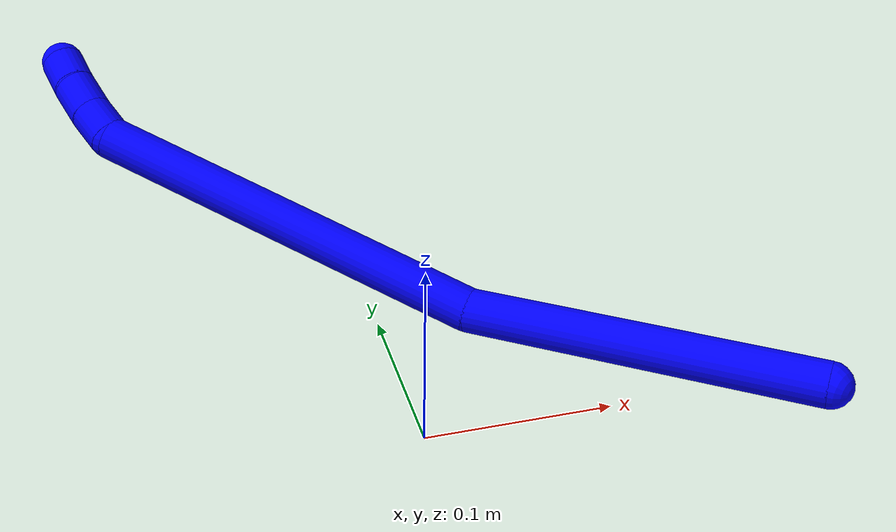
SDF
<sdf version="1.7">
 <world name="default">
  <plugin name="TubeGeneratorPlugin" filename="libtube_generator_plugin.so"/>
  <model name="photoneo_s_sensor">
   <static>1</static>
   <pose>0 0 2 1.57079 1.57079 3.14159</pose>
   <link name="link">
    <inertial><mass>0.1</mass></inertial>
    <sensor name="sensor" type="depth">
     <update_rate>30</update_rate>
     <camera>
      <horizontal_fov>1.22</horizontal_fov>
      <image><width>1920</width><height>1200</height><format>B8G8R8</format></image>
      <clip><near>0.1</near><far>4</far></clip>
      <depth_camera><output>points</output></depth_camera>
     </camera>
     <plugin name="camera_plugin" filename="libgazebo_ros_depth_camera.so">
      <baseline>0.2</baseline>
      <alwaysOn>1</alwaysOn>
      <updateRate>0.0</updateRate>
      <cameraName>camera_ir</cameraName>
      <imageTopicName>/camera/color/image_raw</imageTopicName>
      <cameraInfoTopicName>/camera/color/camera_info</cameraInfoTopicName>
      <depthImageTopicName>/camera/depth/image_raw</depthImageTopicName>
      <depthImageCameraInfoTopicName>/camera/depth/camera_info</depthImageCameraInfoTopicName>
      <pointCloudTopicName>/camera/depth/points</pointCloudTopicName>
      <frameName>fr_optical</frameName>
      <pointCloudCutoff>0.1</pointCloudCutoff>
      <pointCloudCutoffMax>2.0</pointCloudCutoffMax>
      <distortionK1>0</distortionK1>
      <distortionK2>0</distortionK2>
      <distortionK3>0</distortionK3>
      <distortionT1>0</distortionT1>
      <distortionT2>0</distortionT2>
      <CxPrime>0</CxPrime>
      <Cx>0</Cx>
      <Cy>0</Cy>
      <focalLength>0</focalLength>
      <hackBaseline>0</hackBaseline>
     </plugin>
    </sensor>
   </link>
  </model>
  <gravity>0 0 -9.8</gravity>
  <magnetic_field>6e-06 2.3e-05 -4.2e-05</magnetic_field>
  <atmosphere type="adiabatic"/>
  <physics name="default_physics" default="0" type="ode">
   <max_step_size>0.003</max_step_size>
   <real_time_factor>1</real_time_factor>
   <real_time_update_rate>1000</real_time_update_rate>
   <max_contacts>10000</max_contacts>
   <ode>
    <solver>
     <type>quick</type>
     <iters>100</iters>
     <sor>1.3</sor>
     <use_dynamic_moi_rescaling>0</use_dynamic_moi_rescaling>
    </solver>
    <constraints>
     <contact_max_correcting_vel>0</contact_max_correcting_vel>
     <contact_surface_layer>0.001</contact_surface_layer>
     <cfm>0</cfm>
     <erp>0.2</erp>
    </constraints>
   </ode>
  </physics>
  <scene><ambient>0.4 0.4 0.4 1</ambient><background>0.7 0.7 0.7 1</background><shadows>0</shadows></scene>
  <audio><device>default</device></audio>
  <spherical_coordinates>
   <surface_model>EARTH_WGS84</surface_model>
   <latitude_deg>0</latitude_deg>
   <longitude_deg>0</longitude_deg>
   <elevation>0</elevation>
   <heading_deg>0</heading_deg>
  </spherical_coordinates>
  <model name="bin">
   <static>1</static>
   <link name="bottom">
    <collision name="collision-bottom">
     <pose>0 0 -0.01 0 -0 0</pose>
     <geometry><box><size>0.8 0.6 0.02</size></box></geometry>
     <surface>
      <friction><ode><mu>100</mu><mu2>100</mu2></ode></friction>
      <contact><collide_bitmask>65535</collide_bitmask></contact>
     </surface>
    </collision>
   </link>
   <link name="west_wall">
    <collision name="collision-west_wall">
     <pose>-0.41 0 0.1 0 -0 0</pose>
     <geometry><box><size>0.02 0.6 0.2</size></box></geometry>
     <surface>
      <friction><ode><mu>100</mu><mu2>100</mu2></ode></friction>
      <contact><collide_bitmask>65535</collide_bitmask></contact>
     </surface>
    </collision>
   </link>
   <link name="east_wall">
    <collision name="collision-east_wall">
     <pose>0.41 0 0.1 0 -0 0</pose>
     <geometry><box><size>0.02 0.6 0.2</size></box></geometry>
     <surface>
      <friction><ode><mu>100</mu><mu2>100</mu2></ode></friction>
      <contact><collide_bitmask>65535</collide_bitmask></contact>
     </surface>
    </collision>
   </link>
   <link name="south_wall">
    <collision name="collision-south_wall">
     <pose>0 -0.31 0.1 0 -0 0</pose>
     <geometry><box><size>0.8 0.02 0.2</size></box></geometry>
     <surface>
      <friction><ode><mu>100</mu><mu2>100</mu2></ode></friction>
      <contact><collide_bitmask>65535</collide_bitmask></contact>
     </surface>
    </collision>
   </link>
   <link name="north_wall">
    <collision name="collision-north_wall">
     <pose>0 0.31 0.1 0 -0 0</pose>
     <geometry><box><size>0.8 0.02 0.2</size></box></geometry>
     <surface>
      <friction><ode><mu>100</mu><mu2>100</mu2></ode></friction>
      <contact><collide_bitmask>65535</collide_bitmask></contact>
     </surface>
    </collision>
   </link>
  </model>
  <model name="1">
   <static>0</static>
   <link name="1">
    <collision name="collision-cylinder-e_1_1_4">
     <pose>-0.006798 0.035169 0.09151 -0.366919 -0.06923 0.01285</pose>
     <geometry><cylinder><radius>0.0125</radius><length>0.196542</length></cylinder></geometry>
     <surface>
      <friction><ode><mu>1.16</mu><mu2>1.16</mu2><slip1>0</slip1><slip2>0</slip2></ode></friction>
      <contact><ode><kp>1e+06</kp><kd>1</kd><max_vel>0</max_vel><min_depth>0.001</min_depth></ode></contact>
     </surface>
    </collision>
    <visual name="visual-cylinder-e_1_1_4">
     <pose>-0.006798 0.035169 0.09151 -0.366919 -0.06923 0.01285</pose>
     <geometry><cylinder><radius>0.0125</radius><length>0.196542</length></cylinder></geometry>
     <material><ambient>0 0 1 1</ambient></material>
    </visual>
    <collision name="collision-cylinder-e_2_4_5">
     <pose>-0.052666 0.100347 0.290608 -0.272001 -0.336496 0.046479</pose>
     <geometry><cylinder><radius>0.0125</radius><length>0.236662</length></cylinder></geometry>
     <surface>
      <friction><ode><mu>1.16</mu><mu2>1.16</mu2><slip1>0</slip1><slip2>0</slip2></ode></friction>
      <contact><ode><kp>1e+06</kp><kd>1</kd><max_vel>0</max_vel><min_depth>0.001</min_depth></ode></contact>
     </surface>
    </collision>
    <visual name="visual-cylinder-e_2_4_5">
     <pose>-0.052666 0.100347 0.290608 -0.272001 -0.336496 0.046479</pose>
     <geometry><cylinder><radius>0.0125</radius><length>0.236662</length></cylinder></geometry>
     <material><ambient>0 0 1 1</ambient></material>
    </visual>
    <collision name="collision-cylinder-e_3_5_6">
     <pose>-0.09521 0.128149 0.408618 0.208558 -0.31517 -0.033258</pose>
     <geometry><cylinder><radius>0.0125</radius><length>0.022408</length></cylinder></geometry>
     <surface>
      <friction><ode><mu>1.16</mu><mu2>1.16</mu2><slip1>0</slip1><slip2>0</slip2></ode></friction>
      <contact><ode><kp>1e+06</kp><kd>1</kd><max_vel>0</max_vel><min_depth>0.001</min_depth></ode></contact>
     </surface>
    </collision>
    <visual name="visual-cylinder-e_3_5_6">
     <pose>-0.09521 0.128149 0.408618 0.208558 -0.31517 -0.033258</pose>
     <geometry><cylinder><radius>0.0125</radius><length>0.022408</length></cylinder></geometry>
     <material><ambient>0 0 1 1</ambient></material>
    </visual>
    <collision name="collision-cylinder-e_4_6_7">
     <pose>-0.102819 0.122869 0.4294 0.288496 -0.365521 -0.053681</pose>
     <geometry><cylinder><radius>0.0125</radius><length>0.023144</length></cylinder></geometry>
     <surface>
      <friction><ode><mu>1.16</mu><mu2>1.16</mu2><slip1>0</slip1><slip2>0</slip2></ode></friction>
      <contact><ode><kp>1e+06</kp><kd>1</kd><max_vel>0</max_vel><min_depth>0.001</min_depth></ode></contact>
     </surface>
    </collision>
    <visual name="visual-cylinder-e_4_6_7">
     <pose>-0.102819 0.122869 0.4294 0.288496 -0.365521 -0.053681</pose>
     <geometry><cylinder><radius>0.0125</radius><length>0.023144</length></cylinder></geometry>
     <material><ambient>0 0 1 1</ambient></material>
    </visual>
    <collision name="collision-cylinder-e_5_7_2">
     <pose>-0.109854 0.116068 0.449276 0.373231 -0.276408 -0.052512</pose>
     <geometry><cylinder><radius>0.0125</radius><length>0.021244</length></cylinder></geometry>
     <surface>
      <friction><ode><mu>1.16</mu><mu2>1.16</mu2><slip1>0</slip1><slip2>0</slip2></ode></friction>
      <contact><ode><kp>1e+06</kp><kd>1</kd><max_vel>0</max_vel><min_depth>0.001</min_depth></ode></contact>
     </surface>
    </collision>
    <visual name="visual-cylinder-e_5_7_2">
     <pose>-0.109854 0.116068 0.449276 0.373231 -0.276408 -0.052512</pose>
     <geometry><cylinder><radius>0.0125</radius><length>0.021244</length></cylinder></geometry>
     <material><ambient>0 0 1 1</ambient></material>
    </visual>
    <collision name="collision-sphere-2">
     <pose>-0.112753 0.112342 0.458792 0 -0 0</pose>
     <geometry><sphere><radius>0.0125</radius></sphere></geometry>
     <surface>
      <friction><ode><mu>1.16</mu><mu2>1.16</mu2><slip1>0</slip1><slip2>0</slip2></ode></friction>
      <contact><ode><kp>1e+06</kp><kd>1</kd><max_vel>0</max_vel><min_depth>0.001</min_depth></ode></contact>
     </surface>
    </collision>
    <visual name="visual-sphere-2">
     <pose>-0.112753 0.112342 0.458792 0 -0 0</pose>
     <geometry><sphere><radius>0.0125</radius></sphere></geometry>
     <material><ambient>0 0 1 1</ambient></material>
    </visual>
    <collision name="collision-sphere-7">
     <pose>-0.106956 0.119794 0.439761 0 -0 0</pose>
     <geometry><sphere><radius>0.0125</radius></sphere></geometry>
     <surface>
      <friction><ode><mu>1.16</mu><mu2>1.16</mu2><slip1>0</slip1><slip2>0</slip2></ode></friction>
      <contact><ode><kp>1e+06</kp><kd>1</kd><max_vel>0</max_vel><min_depth>0.001</min_depth></ode></contact>
     </surface>
    </collision>
    <visual name="visual-sphere-7">
     <pose>-0.106956 0.119794 0.439761 0 -0 0</pose>
     <geometry><sphere><radius>0.0125</radius></sphere></geometry>
     <material><ambient>0 0 1 1</ambient></material>
    </visual>
    <collision name="collision-sphere-6">
     <pose>-0.098683 0.125943 0.419039 0 -0 0</pose>
     <geometry><sphere><radius>0.0125</radius></sphere></geometry>
     <surface>
      <friction><ode><mu>1.16</mu><mu2>1.16</mu2><slip1>0</slip1><slip2>0</slip2></ode></friction>
      <contact><ode><kp>1e+06</kp><kd>1</kd><max_vel>0</max_vel><min_depth>0.001</min_depth></ode></contact>
     </surface>
    </collision>
    <visual name="visual-sphere-6">
     <pose>-0.098683 0.125943 0.419039 0 -0 0</pose>
     <geometry><sphere><radius>0.0125</radius></sphere></geometry>
     <material><ambient>0 0 1 1</ambient></material>
    </visual>
    <collision name="collision-sphere-5">
     <pose>-0.091737 0.130355 0.398196 0 -0 0</pose>
     <geometry><sphere><radius>0.0125</radius></sphere></geometry>
     <surface>
      <friction><ode><mu>1.16</mu><mu2>1.16</mu2><slip1>0</slip1><slip2>0</slip2></ode></friction>
      <contact><ode><kp>1e+06</kp><kd>1</kd><max_vel>0</max_vel><min_depth>0.001</min_depth></ode></contact>
     </surface>
    </collision>
    <visual name="visual-sphere-5">
     <pose>-0.091737 0.130355 0.398196 0 -0 0</pose>
     <geometry><sphere><radius>0.0125</radius></sphere></geometry>
     <material><ambient>0 0 1 1</ambient></material>
    </visual>
    <collision name="collision-sphere-1">
     <geometry><sphere><radius>0.0125</radius></sphere></geometry>
     <surface>
      <friction><ode><mu>1.16</mu><mu2>1.16</mu2><slip1>0</slip1><slip2>0</slip2></ode></friction>
      <contact><ode><kp>1e+06</kp><kd>1</kd><max_vel>0</max_vel><min_depth>0.001</min_depth></ode></contact>
     </surface>
    </collision>
    <visual name="visual-sphere-1">
     <geometry><sphere><radius>0.0125</radius></sphere></geometry>
     <material><ambient>0 0 1 1</ambient></material>
    </visual>
    <collision name="collision-sphere-4">
     <pose>-0.013596 0.070339 0.18302 0 -0 0</pose>
     <geometry><sphere><radius>0.0125</radius></sphere></geometry>
     <surface>
      <friction><ode><mu>1.16</mu><mu2>1.16</mu2><slip1>0</slip1><slip2>0</slip2></ode></friction>
      <contact><ode><kp>1e+06</kp><kd>1</kd><max_vel>0</max_vel><min_depth>0.001</min_depth></ode></contact>
     </surface>
    </collision>
    <visual name="visual-sphere-4">
     <pose>-0.013596 0.070339 0.18302 0 -0 0</pose>
     <geometry><sphere><radius>0.0125</radius></sphere></geometry>
     <material><ambient>0 0 1 1</ambient></material>
    </visual>
    <inertial>
     <pose>-0.041294 0.077683 0.230801 0 -0 0</pose>
     <mass>0.5</mass>
     <inertia>
      <ixx>0.001742</ixx>
      <ixy>0</ixy>
      <ixz>0</ixz>
      <iyy>0.001745</iyy>
      <iyz>0</iyz>
      <izz>-6.1e-05</izz>
     </inertia>
    </inertial>
   </link>
   <pose>0.204468 -0.034041 0.019074 -1.65037 1.32311 0.468717</pose>
  </model>
 </world>
</sdf>
